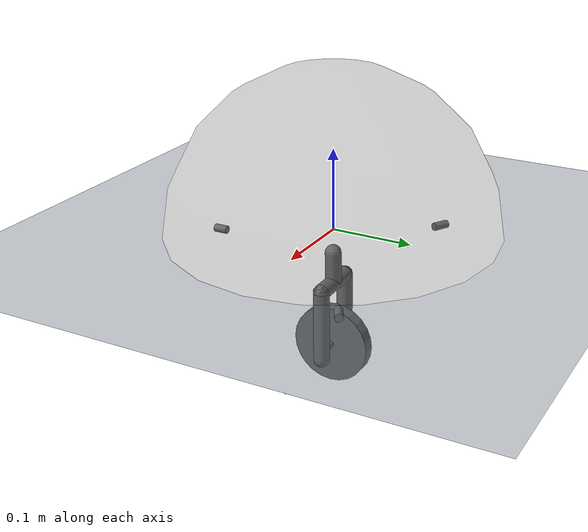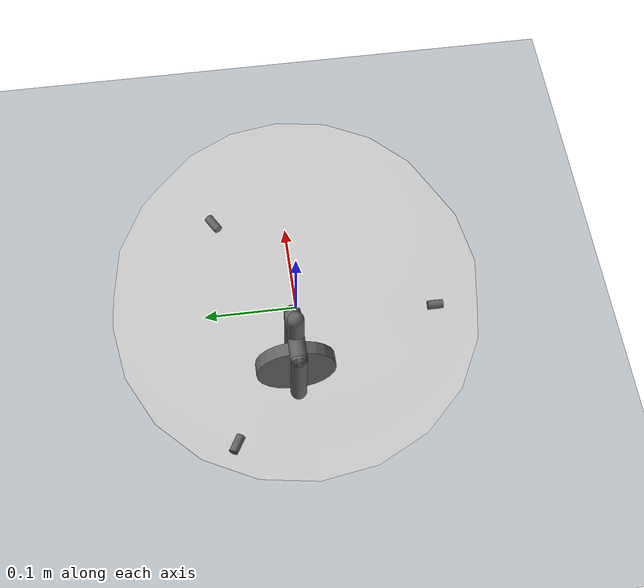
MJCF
<?xml version="1.0"?>
<mujoco model="sphere_robot">
    <!-- Уже более-менее ездиющий вариант робота -->

    <compiler inertiafromgeom="true" angle="degree"/>
    <option integrator="RK4"/>
    <option timestep="0.005" iterations="50" solver="Newton" tolerance="1e-10"/>
    <size njmax="1500" nconmax="5000" nstack="5000000"/>

    <asset>
        <texture type="skybox" builtin="gradient" rgb1="0.3 0.5 0.7" rgb2="0 0 0" width="512" height="512"/>
        <texture name="texplane" type="2d" builtin="checker" rgb1=".2 .3 .4" rgb2=".1 0.15 0.2" width="512" height="512" mark="cross" markrgb=".8 .8 .8"/>
        <texture name="texgeom" type="cube" builtin="flat" mark="cross" width="127" height="1278"
            rgb1="0.8 0.6 0.4" rgb2="0.8 0.6 0.4" markrgb="1 1 1" random="0.01"/>
        <material name="matplane" reflectance="0.3" texture="texplane" texrepeat="1 1" texuniform="true"/>
        <material name="matgeom" texture="texgeom" texuniform="true" rgba="0.8 0.6 .4 1"/>
    </asset>

    <visual>
        <map force="0.1" zfar="30"/>
        <rgba haze="0.15 0.25 0.35 1"/>
        <quality shadowsize="2048"/>
        <global offwidth="800" offheight="800"/>
    </visual>

    <worldbody>
        <geom name="floor" pos="0 0 0" size="0 0 .25" type="plane" material="matplane" condim="3"/>

        <light pos="0 0 6"/>
        <light directional="false" diffuse=".2 .2 .2" specular="0 0 0" pos="0 0 5" dir="0 0 -1" castshadow="false"/>

        <body name="shell" pos="0 0 0">
            <joint name="shell_floor" type="free"/>
            <geom name="sphere_shell" type="sphere" pos="0 0 0" size=".2 .19" rgba=".0 .0 .0 .2" mass="0.3" group="1"/>

            <body name="wheel">
                <joint name="wheel_with_shell" type="ball"/>

                <geom name="wheel_" type="cylinder" fromto="-0.008 0 -0.15  0.008 0 -0.15" size="0.049 0.005" mass="0.7" friction="1 0.005 0.0001"/>
                <body>
                   <geom name="wheel_axis1" type="cylinder" fromto="-0.03 0 -0.15  -0.008 0 -0.15" size="0.005" mass="0.005"/>
                   <geom name="wheel_axis2" type="cylinder" fromto="0.008 0 -0.15  0.03 0 -0.15" size="0.005" mass="0.005"/>

                   <geom name="fork1" type="capsule" fromto="-0.03 0 -0.07  -0.03 0 -0.16" size="0.01" mass="0.01" group="1"/>
                   <geom name="fork2" type="capsule" fromto="0.03 0 -0.07  0.03 0 -0.16" size="0.01" mass="0.01" group="1"/>
                   <geom name="link_f1_f2" type="capsule" fromto="-0.03 0 -0.07   0.03 0 -0.07" size="0.01" mass="0.001" group="1"/>
                   <geom name="fork0" type="capsule" fromto="0 0 -0.03  0 0 -0.07" size="0.01" mass="0.1" group="0.01"/>
                 </body>

                <body>
                    <joint name="fork_with_platform" type="hinge" axis="0 0 1"/>
                    <geom name="platform" type="cylinder" pos="0 0 -0.03" size=".15 .005" rgba=".0 .0 .3 .5" mass="2" group="1"/>
                    <geom name="line1" type="cylinder" fromto="0       -0.15 -0.03    0     -0.167 -0.03" size="0.005"/>
                    <geom name="line2" type="cylinder" fromto="0.1299  0.075 -0.03    0.1472 0.085 -0.03" size="0.005"/>
                    <geom name="line3" type="cylinder" fromto="-0.1299 0.075 -0.03   -0.1472 0.085 -0.03" size="0.005"/>
                </body>

            </body>
        </body>
    </worldbody>

    <contact>
       <pair name="fork_platform_friction" geom1="fork0" geom2="platform" condim="3" friction="1"/>
       <pair name="friction_shell" geom1="floor" geom2="sphere_shell" condim="3" friction="1.5"/>
    </contact>

    <actuator>
        <motor name="platform_motor" gear="0.1" joint="fork_with_platform"/>
        <motor name="wheel_motor" gear="200" joint="wheel_with_shell"/>
    </actuator>
</mujoco>
